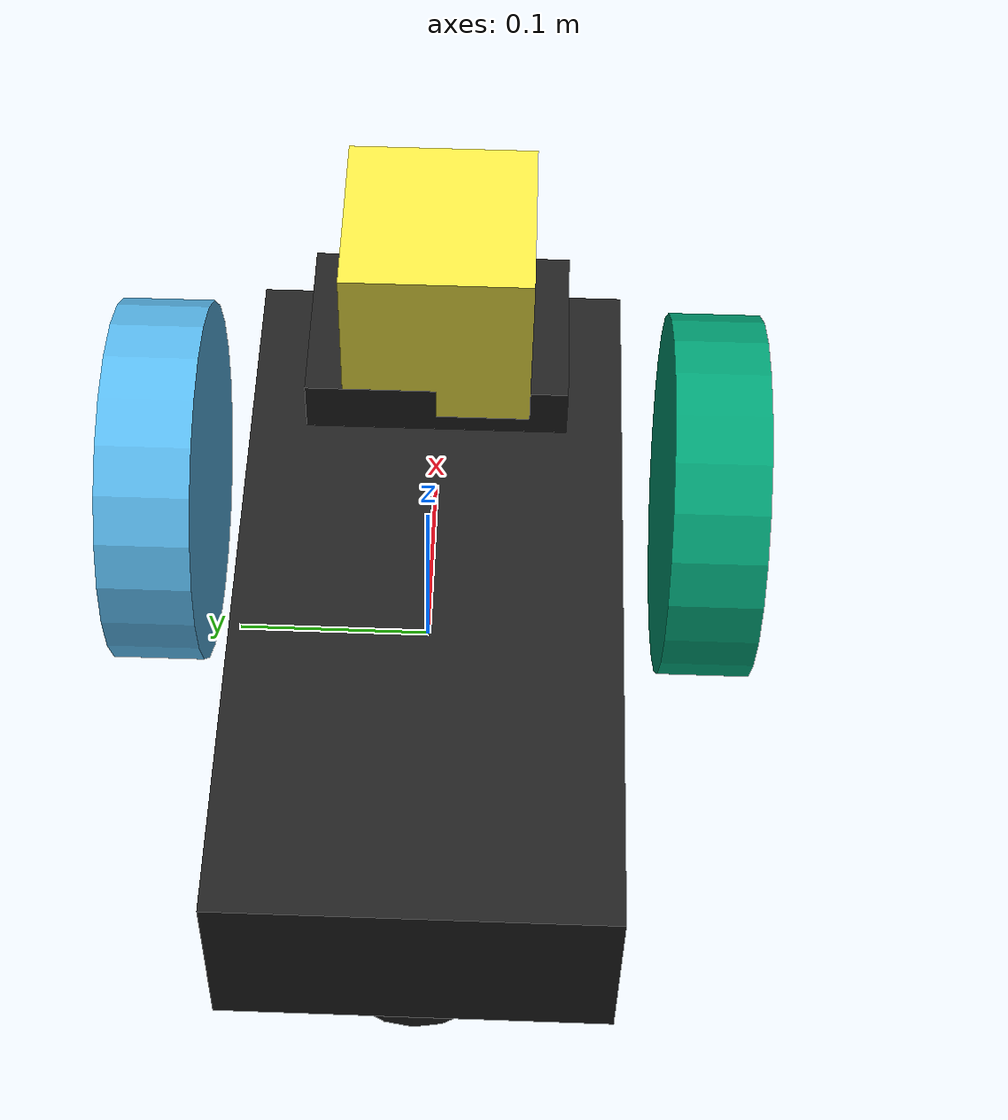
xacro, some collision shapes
<?xml version='1.0'?>

<robot name="myrobot" xmlns:xacro="http://www.ros.org/wiki/xacro">

  <xacro:include filename="$(find mybot_description)/urdf/mybot.gazebo" />
  <xacro:include filename="$(find mybot_description)/urdf/materials.xacro" />

  <link name='chassis'>
    <pose>0 0 0.1 0 0 0</pose>

    <inertial>
      <mass value="10.0"/>
      <origin xyz="0.0 0 0.1" rpy=" 0 0 0"/>
      <inertia
          ixx="0.5" ixy="0" ixz="0"
          iyy="1.0" iyz="0"
          izz="0.1"
      />
    </inertial>

    <collision name='collision'>
      <geometry>
        <box size=".4 .2 .1"/>
      </geometry>
    </collision>

    <visual name='chassis_visual'>
      <origin xyz="0 0 0" rpy=" 0 0 0"/>
      <geometry>
        <box size=".4 .2 .1"/>
      </geometry>
    </visual>

    <collision name='collision_base'>
      <origin xyz="0.15 0 0.065" rpy=" 0 0 0"/>
      <geometry>
        <box size=".1 .14 .03"/>
      </geometry>
    </collision>

    <visual name='base_visual'>
      <origin xyz="0.15 0 0.065" rpy=" 0 0 0"/>
      <geometry>
        <box size=".1 .14 .03"/>
      </geometry>
    </visual>

    <collision name='caster_collision'>
      <origin xyz="-0.15 0 -0.05" rpy=" 0 0 0"/>
      <geometry>
        <sphere radius="0.05"/>
      </geometry>
      <surface>
        <friction>
          <ode>
            <mu>0</mu>
            <mu2>0</mu2>
            <slip1>1.0</slip1>
            <slip2>1.0</slip2>
          </ode>
        </friction>
      </surface>
    </collision>

    <visual name='caster_visual'>
      <origin xyz="-0.15 0 -0.05" rpy=" 0 0 0"/>
      <geometry>
        <sphere radius="0.05"/>
      </geometry>
    </visual>
  </link>

  <link name="left_wheel">
    <!--origin xyz="0.1 0.13 0.1" rpy="0 1.5707 1.5707"/-->
    <collision name="collision">
      <origin xyz="0 0 0" rpy="0 1.5707 1.5707"/>
      <geometry>
        <cylinder radius="0.1" length="0.05"/>
      </geometry>
    </collision>
    <visual name="left_wheel_visual">
      <origin xyz="0 0 0" rpy="0 1.5707 1.5707"/>
      <geometry>
        <cylinder radius="0.1" length="0.05"/>
      </geometry>
    </visual>
    <inertial>
      <origin xyz="0 0 0" rpy="0 1.5707 1.5707"/>
      <mass value="5"/>
      <cylinder_inertia m="5" r="0.1" h="0.05"/>
      <inertia
        ixx="1.0" ixy="0.0" ixz="0.0"
        iyy="1.0" iyz="0.0"
        izz="1.0"/>
    </inertial>
  </link>

  <link name="right_wheel">
    <!--origin xyz="0.1 -0.13 0.1" rpy="0 1.5707 1.5707"/-->
    <collision name="collision">
      <origin xyz="0 0 0" rpy="0 1.5707 1.5707"/>
      <geometry>
        <cylinder radius="0.1" length="0.05"/>
      </geometry>
    </collision>
    <visual name="right_wheel_visual">
      <origin xyz="0 0 0" rpy="0 1.5707 1.5707"/>
      <geometry>
        <cylinder radius="0.1" length="0.05"/>
      </geometry>
    </visual>
    <inertial>
      <origin xyz="0 0 0" rpy="0 1.5707 1.5707"/>
      <mass value="5"/>
      <cylinder_inertia m="5" r="0.1" h="0.05"/>
      <inertia
        ixx="1.0" ixy="0.0" ixz="0.0"
        iyy="1.0" iyz="0.0"
        izz="1.0"/>
    </inertial>
  </link>

  <joint type="continuous" name="left_wheel_hinge">
    <origin xyz="0.1 0.15 0" rpy="0 0 0"/>
    <child link="left_wheel"/>
    <parent link="chassis"/>
    <axis xyz="0 1 0" rpy="0 0 0"/>
    <limit effort="100" velocity="100"/>
    <joint_properties damping="0.0" friction="0.0"/>
  </joint>

  <joint type="continuous" name="right_wheel_hinge">
    <origin xyz="0.1 -0.15 0" rpy="0 0 0"/>
    <child link="right_wheel"/>
    <parent link="chassis"/>
    <axis xyz="0 1 0" rpy="0 0 0"/>
    <limit effort="100" velocity="100"/>
    <joint_properties damping="0.0" friction="0.0"/>
  </joint>

  <link name="kinect">
    <collision>
      <origin xyz="0 0 0" rpy="0 0 1.57"/>
      <geometry>
    	<box size="0.1 0.1 0.1"/>
      </geometry>
    </collision>

    <visual>
      <origin xyz="0 0 0" rpy="0 0 1.57"/>
      <geometry>
        <mesh filename="package://mybot_description/meshes/kinect.dae"/>
      </geometry>
    </visual>

    <inertial>
      <mass value="1e-5" />
      <origin xyz="0 0 0" rpy="0 0 0"/>
      <inertia ixx="1e-6" ixy="0" ixz="0" iyy="1e-6" iyz="0" izz="1e-6" />
    </inertial>
  </link>

  <joint name="kinect_joint" type="fixed">
    <axis xyz="0 0 0" />
    <origin xyz=".15 0 .11" rpy="0 0 0"/>
    <parent link="chassis"/>
    <child link="kinect"/>
  </joint>

</robot>
